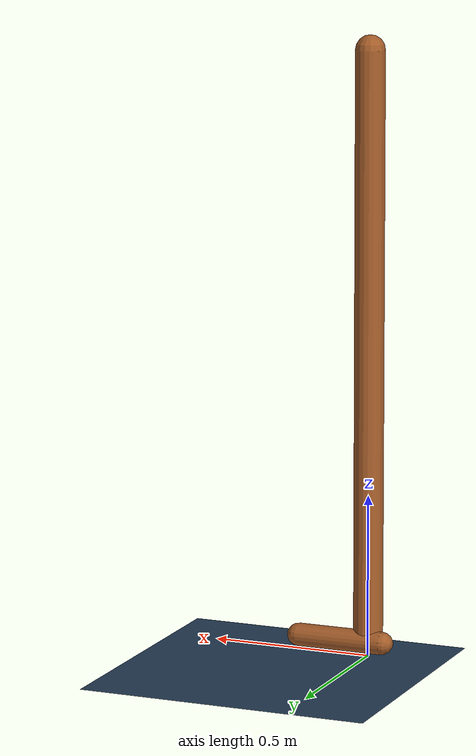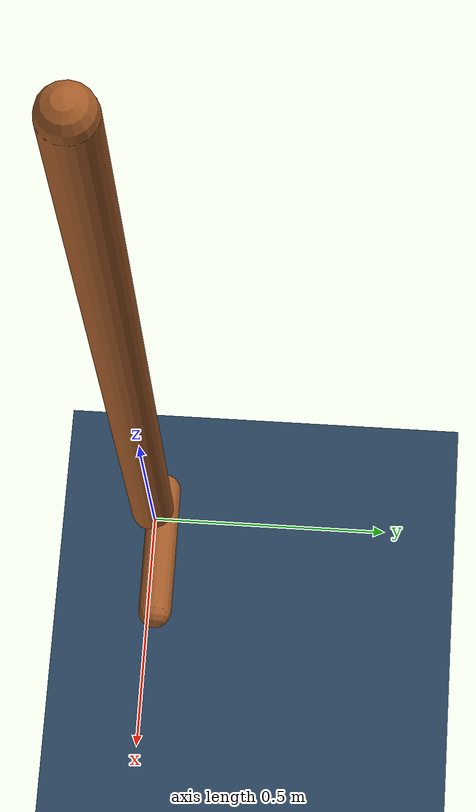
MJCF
<mujoco model="Leg">

  <option gravity="0 0 -9.81">

    <flag sensornoise="enable" />
  </option>

  <visual>
    <map zfar="30" />

    <rgba haze="0.15 0.25 0.35 1" />

  </visual>

  <statistic center="0 0 0.7" />

  <asset>
    <texture type="skybox" builtin="gradient" rgb1=".3 .5 .7" rgb2="0 0 0" width="32" height="512" />
    <texture name="body" type="cube" builtin="flat" mark="cross" width="128" height="128" rgb1="0.8 0.6 0.4" rgb2="0.8 0.6 0.4" markrgb="1 1 1" random="0.01" />
    <material name="body" texture="body" texuniform="true" rgba="0.8 0.6 .4 1" />
    <texture name="grid" type="2d" builtin="checker" width="512" height="512" rgb1=".1 .2 .3" rgb2=".2 .3 .4" />
    <material name="grid" texture="grid" texrepeat="1 1" texuniform="true" reflectance=".2" />
  </asset>

  <default>
    <motor ctrlrange="-1 1" ctrllimited="true" />
    <default class="body">

      <geom type="capsule" mass="10" condim="1" friction="0.7 0.005 0.0001" solimp=".9 .99 .003" solref=".015 1" material="body" group="1" />

      <default class="shin">
        <geom size="0.045 0.045 1.78" />
      </default>

      <default class="foot">
        <geom type="capsule" size=".035" friction="0.9 0 0" solimp=".9 .99 .003" solref=".015 1" mass="2" />

        <default class="foot1">
          <geom fromto="-.07 0 0 .14 0 0" />
        </default>

        <default class="foot2">
          <geom fromto="-.07 .02 0 .14 .02 0" />
        </default>
       </default>

      <default class="knee">
        <joint type="hinge" pos="0 0 .02" range="-160 160" />
      </default>

      <joint type="hinge" damping=".2" stiffness="1" armature=".01" limited="true" solimplimit="0 .99 .01" />
      <default class="ankle">
        <joint range="-50 50" />

        <default class="ankle_y">
          <joint pos="0 0 .04" axis="0 1 0" stiffness="6" />
        </default>

        <default class="ankle_x">
          <joint pos="0 0 .04" stiffness="3" />
        </default>
      </default>

    </default>
  </default>

	<worldbody>

      <geom name="ground" size="0 0 .05" type="plane" material="grid" condim="3" friction="0.99 0.99 0.99" solimp=".9 .99 .003" solref=".015 1" />

      <light name="spotlight" mode="targetbodycom" target="shin_right" diffuse=".8 .8 .8" specular="0.3 0.3 0.3" pos="0 -6 4" cutoff="30" />

        <body name="shin_right" pos="0 0 1.85">

          <geom name="shin_geom" class="shin" fromto="0 0 0 0 0 -1.78" mass="77.68" />

          <joint type="hinge" name="joint_hinge" axis="0 1 0" />

          <joint type="slide" name="joint_slide_x" axis="1 0 0" />
          <joint type="slide" name="joint_slide_z" axis="0 0 1" />

          <body name="le_foot" pos="-0.051406400000000005 0 -1.8">

            <joint name="ankle_y_right" class="ankle_y" />

            <geom name="foot1_right" class="foot2" fromto="0 .02 0 0.27056 .02 0" mass="2.3200000000000003" />
          </body>

        </body>

	</worldbody>

	<actuator>

      <motor joint="ankle_y_right" name="ankle_actuator_y" gear="144" />
      <motor joint="ankle_y_right" name="exo_ankle_actuator_y" gear="144" />
	</actuator>

	<sensor>
      <jointpos joint="joint_hinge" />
      <jointpos joint="ankle_y_right" />
      <jointvel joint="ankle_y_right" noise="0.1" />

	</sensor>
</mujoco>
